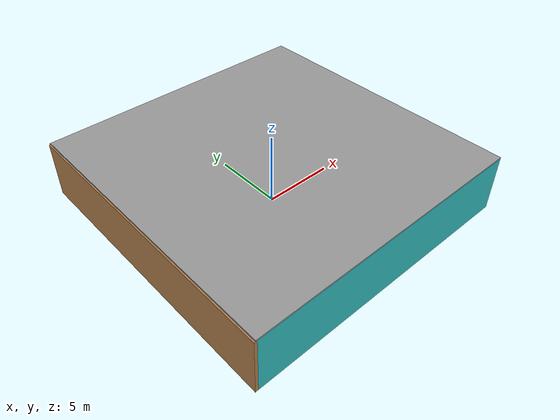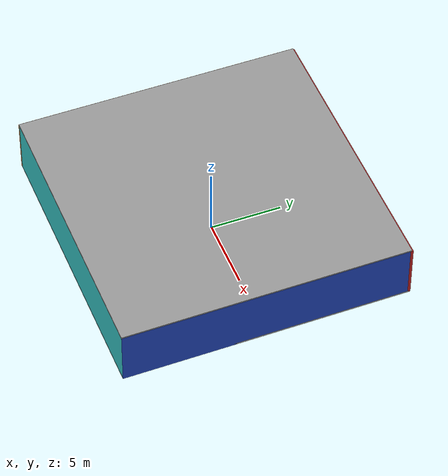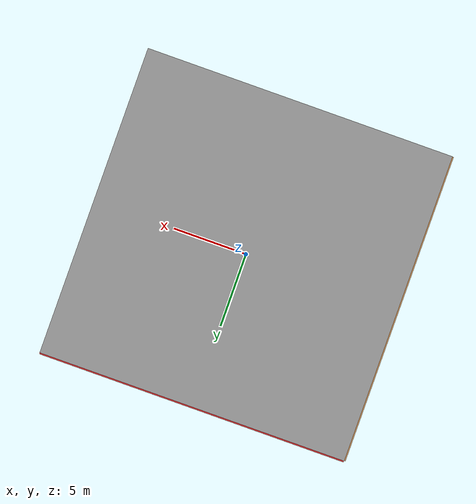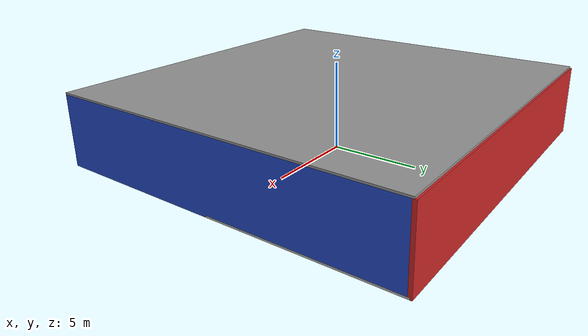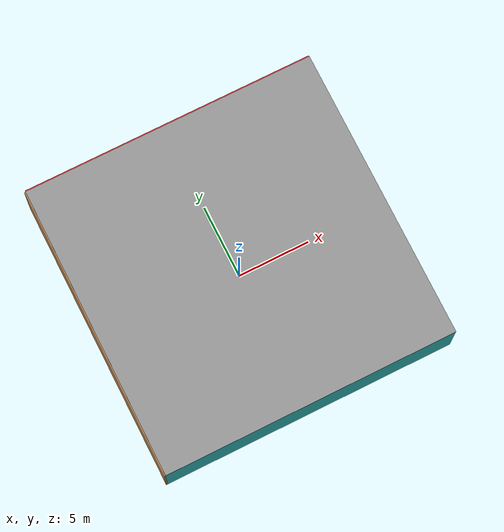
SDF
<sdf version="1.4">
 <world name="default">
  <physics type="ode">
   <max_step_size>0.001</max_step_size>
   <real_time_factor>1</real_time_factor>
   <real_time_update_rate>1000</real_time_update_rate>
   <gravity>0 0 -9.8</gravity>
  </physics>
  <scene><ambient>0.4 0.4 0.4 1</ambient><background>0.7 0.7 0.7 1</background><shadows>1</shadows></scene>
  <model name="Surrounding">
   <static>1</static>
   <link name="Ceiling">
    <collision name="Ceiling_Collision"><geometry><box><size>20 20 0.1</size></box></geometry></collision>
    <visual name="Ceiling_Visual">
     <geometry><box><size>20 20 0.1</size></box></geometry>
     <material>
      <script><uri>file://media/materials/scripts/gazebo.material</uri><name>Gazebo/Grey</name></script>
     </material>
    </visual>
    <pose>0 0 4.05 0 0 0</pose>
   </link>
   <link name="Wall_South">
    <collision name="Wall_South_Collision">
     <geometry><box><size>20 0 4</size></box></geometry>
     <pose>0 0 2 0 -0 0</pose>
    </collision>
    <visual name="Wall_South_Visual">
     <pose>0 0 2 0 -0 0</pose>
     <geometry><box><size>20 0 4</size></box></geometry>
     <material>
      <script><uri>file://media/materials/scripts/gazebo.material</uri><name>Gazebo/Turquoise</name></script>
     </material>
    </visual>
    <velocity_decay><linear>0</linear><angular>0</angular></velocity_decay>
    <pose>0 -10 0 0 -0 0</pose>
   </link>
   <link name="Wall_East">
    <collision name="Wall_21_Collision">
     <geometry><box><size>20 0 4</size></box></geometry>
     <pose>0 0 2 0 -0 0</pose>
    </collision>
    <visual name="Wall_21_Visual">
     <pose>0 0 2 0 -0 0</pose>
     <geometry><box><size>20 0 4</size></box></geometry>
     <material>
      <script><uri>file://media/materials/scripts/gazebo.material</uri><name>Gazebo/BlueGlow</name></script>
     </material>
    </visual>
    <velocity_decay><linear>0</linear><angular>0</angular></velocity_decay>
    <pose>10 0 0 0 -0 1.5708</pose>
   </link>
   <link name="Wall_North">
    <collision name="Wall_22_Collision">
     <geometry><box><size>20 0.2 4</size></box></geometry>
     <pose>0 0 2 0 -0 0</pose>
    </collision>
    <visual name="Wall_22_Visual">
     <pose>0 0 2 0 -0 0</pose>
     <geometry><box><size>20 0.2 4</size></box></geometry>
     <material>
      <script><uri>file://media/materials/scripts/gazebo.material</uri><name>Gazebo/Red</name></script>
     </material>
    </visual>
    <velocity_decay><linear>0</linear><angular>0</angular></velocity_decay>
    <pose>0 10 0 0 -0 0</pose>
   </link>
   <link name="Wall_West">
    <collision name="Wall_23_Collision">
     <geometry><box><size>20 0.2 4</size></box></geometry>
     <pose>0 0 2 0 -0 0</pose>
    </collision>
    <visual name="Wall_23_Visual">
     <pose>0 0 2 0 -0 0</pose>
     <geometry><box><size>20 0.2 4</size></box></geometry>
     <material>
      <script><uri>file://media/materials/scripts/gazebo.material</uri><name>Gazebo/Wood</name></script>
     </material>
    </visual>
    <velocity_decay><linear>0</linear><angular>0</angular></velocity_decay>
    <pose>-10 0 0 0 0 -1.5708</pose>
   </link>
   <link name="Ground_link">
    <collision name="collision">
     <pose>0 0 .05 0 -0 0</pose>
     <geometry><box><size>20 20 0.1</size></box></geometry>
    </collision>
    <visual name="visual">
     <pose>0 0 .05 0 -0 0</pose>
     <geometry><box><size>20 20 0.1</size></box></geometry>
     <material>
      <script><uri>file://media/materials/scripts/gazebo.material</uri><name>Gazebo/Pioneer2Body</name></script>
     </material>
    </visual>
   </link>
   <static>1</static>
  </model>
  <spherical_coordinates>
   <surface_model>EARTH_WGS84</surface_model>
   <latitude_deg>0</latitude_deg>
   <longitude_deg>0</longitude_deg>
   <elevation>0</elevation>
   <heading_deg>0</heading_deg>
  </spherical_coordinates>
  <light name="lightball_0" type="diffuse">
   <diffuse>0.8 0.8 0.8 1</diffuse>
   <specular>0.2 0.2 0.2 1</specular>
   <attenuation>
    <range>100</range>
    <constant>0.7</constant>
    <linear>0.01</linear>
    <quadratic>0.001</quadratic>
   </attenuation>
   <direction>-0.5 0.1 -0.9</direction>
   <pose>7.85142251722 -8.59293890903 3.0541852724 0 0 0</pose>
  </light>
  <light name="lightball_1" type="diffuse">
   <diffuse>0.8 0.8 0.8 1</diffuse>
   <specular>0.2 0.2 0.2 1</specular>
   <attenuation>
    <range>100</range>
    <constant>0.7</constant>
    <linear>0.01</linear>
    <quadratic>0.001</quadratic>
   </attenuation>
   <direction>-0.5 0.1 -0.9</direction>
   <pose>5.96853506825 -6.59178315383 3.2393205126 0 0 0</pose>
  </light>
  <light name="lightball_2" type="diffuse">
   <diffuse>0.8 0.8 0.8 1</diffuse>
   <specular>0.2 0.2 0.2 1</specular>
   <attenuation>
    <range>100</range>
    <constant>0.7</constant>
    <linear>0.01</linear>
    <quadratic>0.001</quadratic>
   </attenuation>
   <direction>-0.5 0.1 -0.9</direction>
   <pose>-1.71374271015 6.42768496005 2.93014054422 0 0 0</pose>
  </light>
  <light name="lightball_3" type="diffuse">
   <diffuse>0.8 0.8 0.8 1</diffuse>
   <specular>0.2 0.2 0.2 1</specular>
   <attenuation>
    <range>100</range>
    <constant>0.7</constant>
    <linear>0.01</linear>
    <quadratic>0.001</quadratic>
   </attenuation>
   <direction>-0.5 0.1 -0.9</direction>
   <pose>-4.28187009655 6.36598271248 1.11818752798 0 0 0</pose>
  </light>
  <light name="lightball_4" type="diffuse">
   <diffuse>0.8 0.8 0.8 1</diffuse>
   <specular>0.2 0.2 0.2 1</specular>
   <attenuation>
    <range>100</range>
    <constant>0.7</constant>
    <linear>0.01</linear>
    <quadratic>0.001</quadratic>
   </attenuation>
   <direction>-0.5 0.1 -0.9</direction>
   <pose>-4.12920296434 -1.31500277195 3.0597620236 0 0 0</pose>
  </light>
  <light name="lightball_5" type="diffuse">
   <diffuse>0.8 0.8 0.8 1</diffuse>
   <specular>0.2 0.2 0.2 1</specular>
   <attenuation>
    <range>100</range>
    <constant>0.7</constant>
    <linear>0.01</linear>
    <quadratic>0.001</quadratic>
   </attenuation>
   <direction>-0.5 0.1 -0.9</direction>
   <pose>-6.24697030242 -1.20136562302 2.7985749414 0 0 0</pose>
  </light>
  <light name="lightball_6" type="diffuse">
   <diffuse>0.8 0.8 0.8 1</diffuse>
   <specular>0.2 0.2 0.2 1</specular>
   <attenuation>
    <range>100</range>
    <constant>0.7</constant>
    <linear>0.01</linear>
    <quadratic>0.001</quadratic>
   </attenuation>
   <direction>-0.5 0.1 -0.9</direction>
   <pose>9.51885992197 -8.25693381269 3.84553503938 0 0 0</pose>
  </light>
  <light name="lightball_7" type="diffuse">
   <diffuse>0.8 0.8 0.8 1</diffuse>
   <specular>0.2 0.2 0.2 1</specular>
   <attenuation>
    <range>100</range>
    <constant>0.7</constant>
    <linear>0.01</linear>
    <quadratic>0.001</quadratic>
   </attenuation>
   <direction>-0.5 0.1 -0.9</direction>
   <pose>-2.54352582761 -3.91496050181 3.70521104226 0 0 0</pose>
  </light>
  <light name="lightball_8" type="diffuse">
   <diffuse>0.8 0.8 0.8 1</diffuse>
   <specular>0.2 0.2 0.2 1</specular>
   <attenuation>
    <range>100</range>
    <constant>0.7</constant>
    <linear>0.01</linear>
    <quadratic>0.001</quadratic>
   </attenuation>
   <direction>-0.5 0.1 -0.9</direction>
   <pose>4.91413296433 -8.7323621464 1.63481083187 0 0 0</pose>
  </light>
  <include>
   <uri>model://textured_shapes</uri>
   <pose>-6.74032585209 1.16488755857 0 0 0 0.351129402624</pose>
  </include>
  <include><uri>model://table</uri><pose>-5.46462254812 -4.95400429353 0 0 0 2.63790556913</pose></include>
  <include><uri>model://cabinet</uri><pose>-3.82475766238 1.27978364179 0 0 0 0.153389573559</pose></include>
  <include><uri>model://cabinet</uri><pose>-4.57629965874 5.19969513273 0 0 0 2.40788439261</pose></include>
  <include>
   <uri>model://construction_cone</uri>
   <pose>1.71792049574 -5.65850177236 0 0 0 2.23866281868</pose>
  </include>
  <include><uri>model://cabinet</uri><pose>4.13652255467 -8.58131590857 0 0 0 1.50974942046</pose></include>
  <include><uri>model://table</uri><pose>4.82348061575 -5.40593439393 0 0 0 2.67743214125</pose></include>
  <include>
   <uri>model://textured_shapes</uri>
   <pose>7.45051239005 -7.69941699573 0 0 0 2.10800979148</pose>
  </include>
 </world>
</sdf>

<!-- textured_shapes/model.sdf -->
<sdf version="1.6">
  <model name="textured_shapes">
    <pose>0 0 0.5 0 0 0</pose>
    <link name="box">
      <pose>0 -1.5 0 0 0 0</pose>
      <collision name="collision">
        <geometry>
          <box>
            <size>1 1 1</size>
          </box>
        </geometry>
      </collision>
      <visual name="visual">
        <geometry>
          <box>
            <size>1 1 1</size>
          </box>
        </geometry>
        <material>
          <script>
            <uri>model://../model_source/models/textured_shapes/materials/scripts</uri>
            <uri>model://../model_source/models/textured_shapes/materials/textures</uri>
            <name>TexturedShape/Squares</name>
          </script>
        </material>
      </visual>
    </link>
    <link name="sphere">
      <collision name="collision">
        <geometry>
          <sphere>
            <radius>0.5</radius>
          </sphere>
        </geometry>
      </collision>
      <visual name="visual">
        <geometry>
          <sphere>
            <radius>0.5</radius>
          </sphere>
        </geometry>
        <material>
          <script>
            <uri>model://../model_source/models/textured_shapes/materials/scripts</uri>
            <uri>model://../model_source/models/textured_shapes/materials/textures</uri>
            <name>TexturedShape/Squares</name>
          </script>
        </material>
      </visual>
    </link>
    <link name="cylinder">
      <pose>0 1.5 0 0 0 0</pose>
      <collision name="collision">
        <geometry>
          <cylinder>
            <radius>0.5</radius>
            <length>1</length>
          </cylinder>
        </geometry>
      </collision>
      <visual name="visual">
        <geometry>
          <cylinder>
            <radius>0.5</radius>
            <length>1</length>
          </cylinder>
        </geometry>
        <material>
          <script>
            <uri>model://../model_source/models/textured_shapes/materials/scripts</uri>
            <uri>model://../model_source/models/textured_shapes/materials/textures</uri>
            <name>TexturedShape/Squares</name>
          </script>
        </material>
      </visual>
    </link>
  </model>
</sdf>

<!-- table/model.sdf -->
<sdf version="1.5">
  <model name="table">
    <static>true</static>
    <link name="link">
      <collision name="surface">
        <pose>0 0 1.0 0 0 0</pose>
        <geometry>
          <box>
            <size>1.5 0.8 0.03</size>
          </box>
        </geometry>
        <surface>
          <friction>
            <ode>
              <mu>0.6</mu>
              <mu2>0.6</mu2>
            </ode>
          </friction>
        </surface>
      </collision>
      <visual name="visual1">
        <pose>0 0 1.0 0 0 0</pose>
        <geometry>
          <box>
            <size>1.5 0.8 0.03</size>
          </box>
        </geometry>
        <material>
          <script>
            <uri>model://media/materials/scripts/gazebo.material</uri>
            <name>Gazebo/Wood</name>
          </script>
        </material>
      </visual>
      <collision name="front_left_leg">
        <pose>0.68 0.38 0.5 0 0 0</pose>
        <geometry>
          <cylinder>
            <radius>0.02</radius>
            <length>1.0</length>
          </cylinder>
        </geometry>
      </collision>
      <visual name="front_left_leg">
        <pose>0.68 0.38 0.5 0 0 0</pose>
        <geometry>
          <cylinder>
            <radius>0.02</radius>
            <length>1.0</length>
          </cylinder>
        </geometry>
        <material>
          <script>
            <uri>model://media/materials/scripts/gazebo.material</uri>
            <name>Gazebo/Grey</name>
          </script>
        </material>
      </visual>
      <collision name="front_right_leg">
        <pose>0.68 -0.38 0.5 0 0 0</pose>
        <geometry>
          <cylinder>
            <radius>0.02</radius>
            <length>1.0</length>
          </cylinder>
        </geometry>
      </collision>
      <visual name="front_right_leg">
        <pose>0.68 -0.38 0.5 0 0 0</pose>
        <geometry>
          <cylinder>
            <radius>0.02</radius>
            <length>1.0</length>
          </cylinder>
        </geometry>
        <material>
          <script>
            <uri>model://media/materials/scripts/gazebo.material</uri>
            <name>Gazebo/Grey</name>
          </script>
        </material>
      </visual>
      <collision name="back_right_leg">
        <pose>-0.68 -0.38 0.5 0 0 0</pose>
        <geometry>
          <cylinder>
            <radius>0.02</radius>
            <length>1.0</length>
          </cylinder>
        </geometry>
      </collision>
      <visual name="back_right_leg">
        <pose>-0.68 -0.38 0.5 0 0 0</pose>
        <geometry>
          <cylinder>
            <radius>0.02</radius>
            <length>1.0</length>
          </cylinder>
        </geometry>
        <material>
          <script>
            <uri>model://media/materials/scripts/gazebo.material</uri>
            <name>Gazebo/Grey</name>
          </script>
        </material>
      </visual>
      <collision name="back_left_leg">
        <pose>-0.68 0.38 0.5 0 0 0</pose>
        <geometry>
          <cylinder>
            <radius>0.02</radius>
            <length>1.0</length>
          </cylinder>
        </geometry>
      </collision>
      <visual name="back_left_leg">
        <pose>-0.68 0.38 0.5 0 0 0</pose>
        <geometry>
          <cylinder>
            <radius>0.02</radius>
            <length>1.0</length>
          </cylinder>
        </geometry>
        <material>
          <script>
            <uri>model://media/materials/scripts/gazebo.material</uri>
            <name>Gazebo/Grey</name>
          </script>
        </material>
      </visual>
    </link>
  </model>
</sdf>

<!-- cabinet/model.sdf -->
<sdf version="1.5">
  <model name="cabinet">
    <static>true</static>
    <link name="cabinet_bottom_plate">
      <inertial>
        <pose>0 0 -1 0 0 0</pose>
        <inertia>
          <ixx>2.050000</ixx>
          <ixy>0</ixy>
          <ixz>0</ixz>
          <iyy>2.050000</iyy>
          <iyz>0</iyz>
          <izz>2.050000</izz>
        </inertia>
        <mass>25.000000</mass>
      </inertial>
      <collision name="cabinet_bottom_plate_geom">
        <pose>0 0 0.010000 0 0 0</pose>
        <geometry>
          <box>
            <size>0.450000 0.450000 0.020000</size>
          </box>
        </geometry>
      </collision>
      <visual name="cabinet_bottom_plate_geom_visual">
        <pose>0 0 0.010000 0 0 0</pose>
        <geometry>
          <box>
            <size>0.450000 0.450000 0.020000</size>
          </box>
        </geometry>
        <material>
          <script>
            <uri>model://media/materials/scripts/gazebo.material</uri>
            <name>Gazebo/Wood</name>
          </script>
        </material>
      </visual>
      <collision name="cabinet_bottom_plate_geom_cabinet_back_plate">
        <pose>0.235000 0 0.510000 0 0 0</pose>
        <geometry>
          <box>
            <size>0.020000 0.450000 1.020000</size>
          </box>
        </geometry>
      </collision>
      <visual name="cabinet_bottom_plate_geom_cabinet_back_plate_visual">
        <pose>0.235000 0 0.510000 0 0 0</pose>
        <geometry>
          <box>
            <size>0.020000 0.450000 1.020000</size>
          </box>
        </geometry>
        <material>
          <script>
            <uri>model://media/materials/scripts/gazebo.material</uri>
            <name>Gazebo/Wood</name>
          </script>
        </material>
      </visual>
      <collision name="cabinet_bottom_plate_geom_cabinet_left_plate">
        <pose>0 0.235000 0.510000 0 0 0</pose>
        <geometry>
          <box>
            <size>0.450000 0.020000 1.020000</size>
          </box>
        </geometry>
      </collision>
      <visual name="cabinet_bottom_plate_geom_cabinet_left_plate_visual">
        <pose>0 0.235000 0.510000 0 0 0</pose>
        <geometry>
          <box>
            <size>0.450000 0.020000 1.020000</size>
          </box>
        </geometry>
        <material>
          <script>
            <uri>model://media/materials/scripts/gazebo.material</uri>
            <name>Gazebo/Wood</name>
          </script>
        </material>
      </visual>
      <collision name="cabinet_bottom_plate_geom_cabinet_middle_plate">
        <pose>0 0 0.510000 0 0 0</pose>
        <geometry>
          <box>
            <size>0.450000 0.450000 0.020000</size>
          </box>
        </geometry>
      </collision>
      <visual name="cabinet_bottom_plate_geom_cabinet_middle_plate_visual">
        <pose>0 0 0.510000 0 0 0</pose>
        <geometry>
          <box>
            <size>0.450000 0.450000 0.020000</size>
          </box>
        </geometry>
        <material>
          <script>
            <uri>model://media/materials/scripts/gazebo.material</uri>
            <name>Gazebo/Wood</name>
          </script>
        </material>
      </visual>
      <collision name="cabinet_bottom_plate_geom_cabinet_right_plate">
        <pose>0 -0.235000 0.510000 0 0 0</pose>
        <geometry>
          <box>
            <size>0.450000 0.020000 1.020000</size>
          </box>
        </geometry>
      </collision>
      <visual name="cabinet_bottom_plate_geom_cabinet_right_plate_visual">
        <pose>0 -0.235000 0.510000 0 0 0</pose>
        <geometry>
          <box>
            <size>0.450000 0.020000 1.020000</size>
          </box>
        </geometry>
        <material>
          <script>
            <uri>model://media/materials/scripts/gazebo.material</uri>
            <name>Gazebo/Wood</name>
          </script>
        </material>
      </visual>
      <collision name="cabinet_bottom_plate_geom_cabinet_top_plate">
        <pose>0 0 1.010000 0 0 0</pose>
        <geometry>
          <box>
            <size>0.450000 0.450000 0.020000</size>
          </box>
        </geometry>
      </collision>
      <visual name="cabinet_bottom_plate_geom_cabinet_top_plate_visual">
        <pose>0 0 1.010000 0 0 0</pose>
        <geometry>
          <box>
            <size>0.450000 0.450000 0.020000</size>
          </box>
        </geometry>
        <material>
          <script>
            <uri>model://media/materials/scripts/gazebo.material</uri>
            <name>Gazebo/Wood</name>
          </script>
        </material>
      </visual>
    </link>
  </model>
</sdf>

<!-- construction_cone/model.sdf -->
<sdf version="1.5">
  <model name="Construction Cone">
    <link name="link">
      <collision name="collision">
        <geometry>
          <mesh>
            <scale>10 10 10</scale>
            <uri>file://isr-testbed/construction_cone/meshes/construction_cone.dae</uri>
          </mesh>
        </geometry>
      </collision>
      <visual name="visual">
        <geometry>
          <mesh>
            <scale>10 10 10</scale>
            <uri>file://isr-testbed/construction_cone/meshes/construction_cone.dae</uri>
          </mesh>
        </geometry>
      </visual>
    </link>
  </model>
</sdf>
